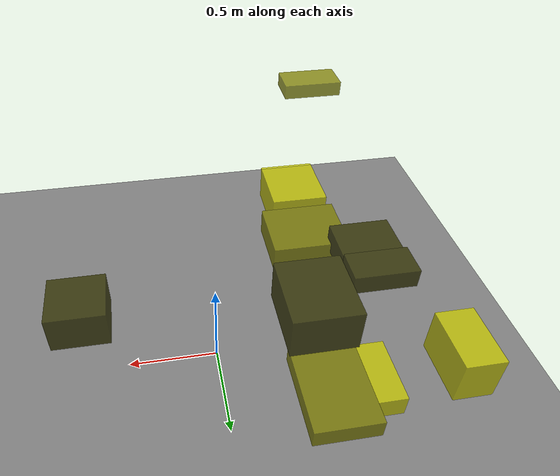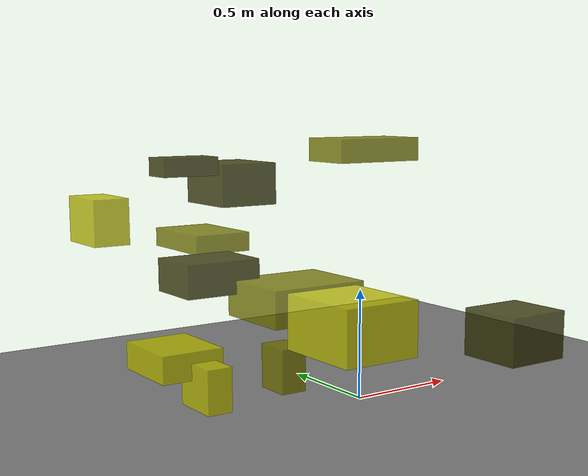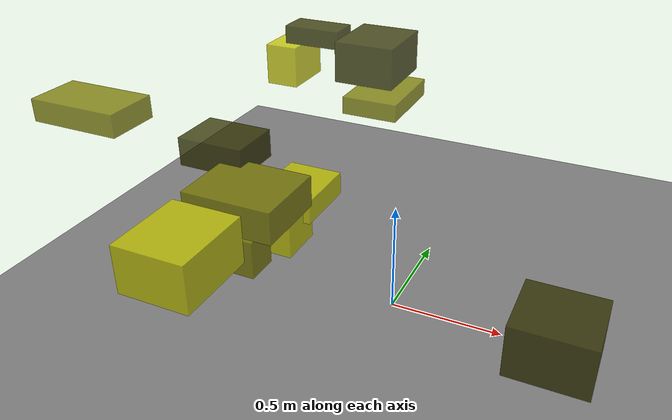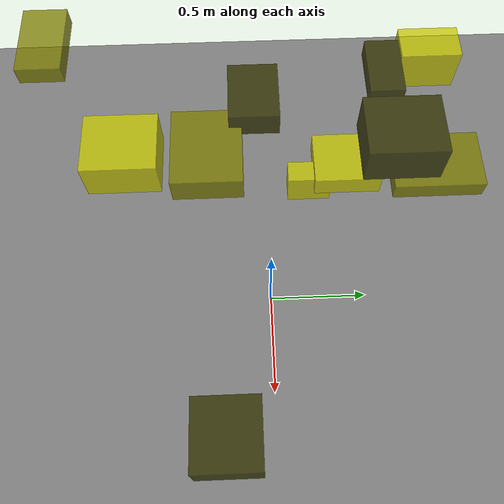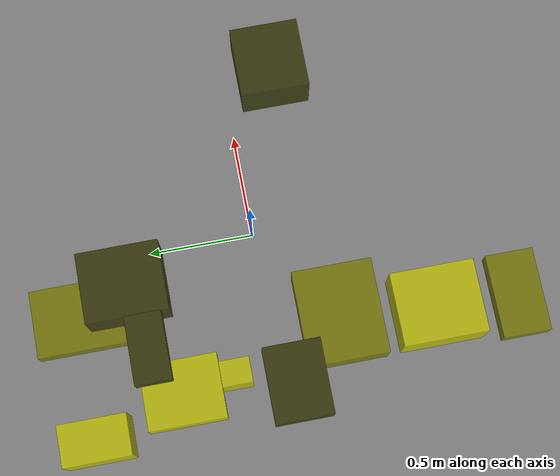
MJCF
<?xml version="1.0"?>
<mujoco model="obstacle_scene">
  <compiler angle="radian" coordinate="local"/>
  <option timestep="0.001" gravity="0 0 -9.81"/>

  <asset>
    <material name="obstacle_mat" rgba="0.8 0.8 0.0 0.8"/>
    <material name="ground_mat" rgba="0.5 0.5 0.5 1"/>
  </asset>

  <worldbody>
    <!-- Ground plane -->
    <geom name="ground" type="plane" size="3 3 0.1" material="ground_mat"/>

    <!-- Obstacles -->
    <body name="obstacle_0" pos="-0.331777 0.557249 0.958621">
      <geom name="obs_0" type="box" size="0.140604 0.163553 0.095644" rgba="0.2 0.2 0.0 0.8"/>
    </body>
    <body name="obstacle_1" pos="-0.576299 -0.249646 0.284966">
      <geom name="obs_1" type="box" size="0.054387 0.075908 0.090357" rgba="0.5 0.5 0.0 0.8"/>
    </body>
    <body name="obstacle_2" pos="-0.899828 0.773262 0.801040">
      <geom name="obs_2" type="box" size="0.083971 0.138044 0.104621" rgba="0.8 0.8 0.0 0.8"/>
    </body>
    <body name="obstacle_3" pos="0.748192 -0.226836 0.246337">
      <geom name="obs_3" type="box" size="0.165721 0.160119 0.115373" rgba="0.2 0.2 0.0 0.8"/>
    </body>
    <body name="obstacle_4" pos="-0.684193 -0.905161 1.179857">
      <geom name="obs_4" type="box" size="0.157112 0.089667 0.037741" rgba="0.5 0.5 0.0 0.8"/>
    </body>
    <body name="obstacle_5" pos="-0.580686 -0.707919 0.538687">
      <geom name="obs_5" type="box" size="0.157454 0.181320 0.105031" rgba="0.8 0.8 0.0 0.8"/>
    </body>
    <body name="obstacle_6" pos="-0.609572 0.496286 1.047174">
      <geom name="obs_6" type="box" size="0.134501 0.072037 0.041432" rgba="0.2 0.2 0.0 0.8"/>
    </body>
    <body name="obstacle_7" pos="-0.543330 -0.290481 0.568894">
      <geom name="obs_7" type="box" size="0.205114 0.171754 0.073108" rgba="0.5 0.5 0.0 0.8"/>
    </body>
    <body name="obstacle_8" pos="-0.706873 0.442276 0.196749">
      <geom name="obs_8" type="box" size="0.148093 0.178414 0.062990" rgba="0.8 0.8 0.0 0.8"/>
    </body>
    <body name="obstacle_9" pos="-0.800947 -0.056708 0.654734">
      <geom name="obs_9" type="box" size="0.159137 0.123300 0.066571" rgba="0.2 0.2 0.0 0.8"/>
    </body>
    <body name="obstacle_10" pos="-0.374355 0.770669 0.674693">
      <geom name="obs_10" type="box" size="0.141301 0.205071 0.044300" rgba="0.5 0.5 0.0 0.8"/>
    </body>
    <body name="obstacle_11" pos="-0.656412 0.240517 0.107649">
      <geom name="obs_11" type="box" size="0.059493 0.117828 0.100810" rgba="0.8 0.8 0.0 0.8"/>
    </body>
  </worldbody>
</mujoco>
